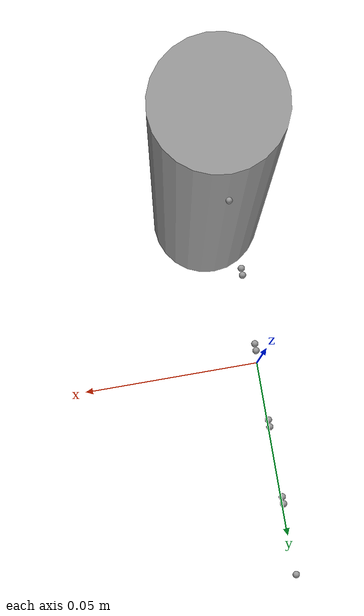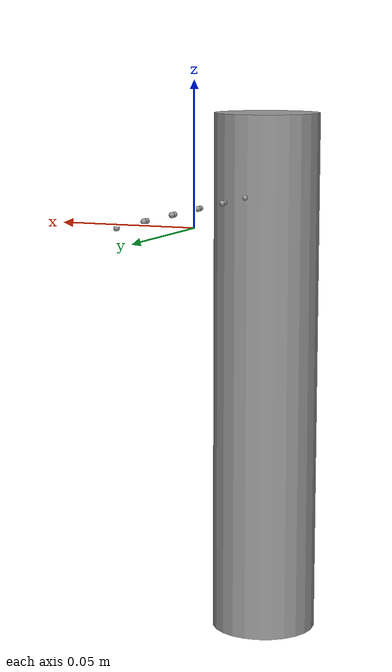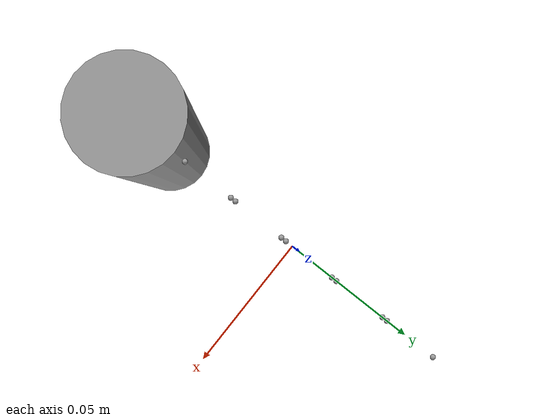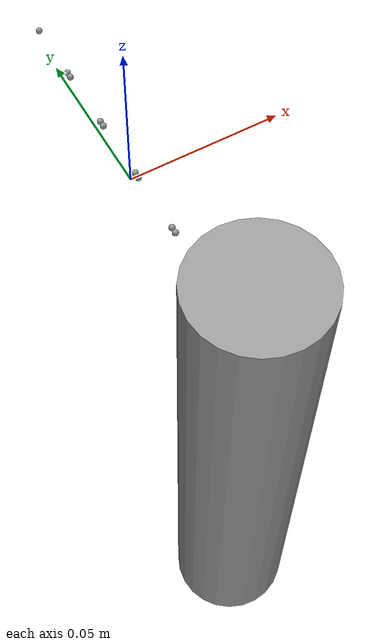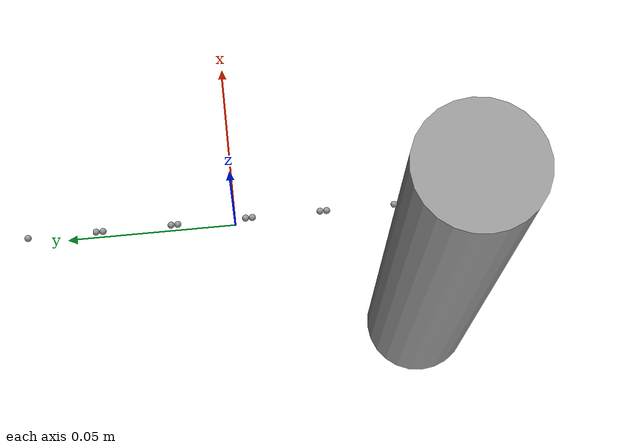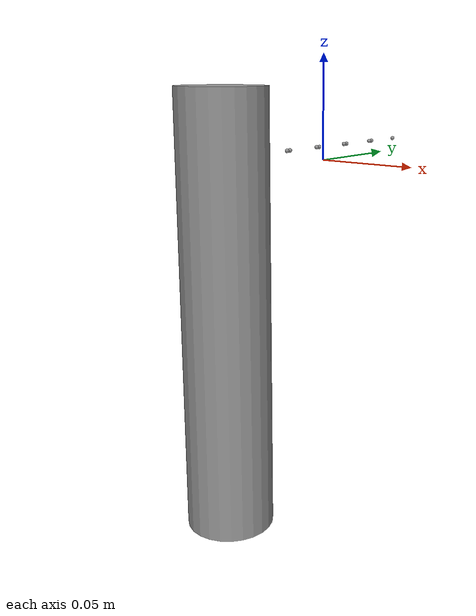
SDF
<?xml version='1.0'?>
<sdf version='1.6'>
  <model name='RubberRod'>
    <link name='link_2_clone'>
      <self_collide>true</self_collide>
      <pose frame=''>0 -0.069091 -0.063636 0 -0 0</pose>
      <inertial>
        <mass>1</mass>
        <inertia>
          <ixx>0.15</ixx>
          <ixy>0</ixy>
          <ixz>0</ixz>
          <iyy>0.15</iyy>
          <iyz>0</iyz>
          <izz>0.12</izz>
        </inertia>
        <pose frame=''>0 0 0 0 -0 0</pose>
      </inertial>
      <self_collide>0</self_collide>
      <kinematic>0</kinematic>
      <visual name='visual'>
        <pose frame=''>0 0 0 0 -0 0</pose>
        <geometry>
          <cylinder>
            <radius>0.02</radius>
            <length>0.2</length>
          </cylinder>
        </geometry>
        <material>
          <lighting>1</lighting>
          <script>
            <uri>file://media/materials/scripts/gazebo.material</uri>
            <name>Gazebo/Grey</name>
          </script>
          <shader type='pixel'>
            <normal_map>__default__</normal_map>
          </shader>
          <ambient>0.3 0.3 0.3 1</ambient>
          <diffuse>0.7 0.7 0.7 1</diffuse>
          <specular>0.01 0.01 0.01 1</specular>
          <emissive>0 0 0 1</emissive>
        </material>
        <transparency>0</transparency>
        <cast_shadows>1</cast_shadows>
      </visual>
      <collision name='collision'>
        <laser_retro>0</laser_retro>
        <max_contacts>10</max_contacts>
        <pose frame=''>0 0 0 0 -0 0</pose>
        <geometry>
          <cylinder>
            <radius>0.02</radius>
            <length>0.2</length>
          </cylinder>
        </geometry>
        <surface>
          <friction>
            <ode>
              <mu>1</mu>
              <mu2>1</mu2>
              <fdir1>0 0 0</fdir1>
              <slip1>0</slip1>
              <slip2>0</slip2>
            </ode>
            <torsional>
              <coefficient>1</coefficient>
              <patch_radius>0</patch_radius>
              <surface_radius>0</surface_radius>
              <use_patch_radius>1</use_patch_radius>
              <ode>
                <slip>0</slip>
              </ode>
            </torsional>
          </friction>
          <bounce>
            <restitution_coefficient>0</restitution_coefficient>
            <threshold>1e+06</threshold>
          </bounce>
          <contact>
            <collide_without_contact>0</collide_without_contact>
            <collide_without_contact_bitmask>1</collide_without_contact_bitmask>
            <collide_bitmask>1</collide_bitmask>
            <ode>
              <soft_cfm>0</soft_cfm>
              <soft_erp>0.2</soft_erp>
              <kp>1e+13</kp>
              <kd>1</kd>
              <max_vel>0.01</max_vel>
              <min_depth>0</min_depth>
            </ode>
            <bullet>
              <split_impulse>1</split_impulse>
              <split_impulse_penetration_threshold>-0.01</split_impulse_penetration_threshold>
              <soft_cfm>0</soft_cfm>
              <soft_erp>0.2</soft_erp>
              <kp>1e+13</kp>
              <kd>1</kd>
            </bullet>
          </contact>
        </surface>
      </collision>
    </link>
    <link name='link_3_clone'>
      <self_collide>true</self_collide>
      <pose frame=''>0 -0.047091 0.006364 0 -0 0</pose>
      <inertial>
        <mass>0.0001</mass>
        <inertia>
          <ixx>0.000001</ixx>
          <ixy>0</ixy>
          <ixz>0</ixz>
          <iyy>0.000001</iyy>
          <iyz>0</iyz>
          <izz>0.000001</izz>
        </inertia>
        <pose frame=''>0 0 0 0 -0 0</pose>
      </inertial>
      <self_collide>0</self_collide>
      <kinematic>0</kinematic>
      <visual name='visual'>
        <pose frame=''>0 0 0 0 -0 0</pose>
        <geometry>
          <sphere>
            <radius>0.001</radius>
          </sphere>
        </geometry>
        <material>
          <lighting>1</lighting>
          <script>
            <uri>file://media/materials/scripts/gazebo.material</uri>
            <name>Gazebo/Grey</name>
          </script>
          <shader type='pixel'>
            <normal_map>__default__</normal_map>
          </shader>
          <ambient>0.3 0.3 0.3 1</ambient>
          <diffuse>0.7 0.7 0.7 1</diffuse>
          <specular>0.01 0.01 0.01 1</specular>
          <emissive>0 0 0 1</emissive>
        </material>
        <transparency>0</transparency>
        <cast_shadows>1</cast_shadows>
      </visual>
      <collision name='collision'>
        <laser_retro>0</laser_retro>
        <max_contacts>10</max_contacts>
        <pose frame=''>0 0 0 0 -0 0</pose>
        <geometry>
          <sphere>
            <radius>0.001</radius>
          </sphere>
        </geometry>
        <surface>
          <friction>
            <ode>
              <mu>1</mu>
              <mu2>1</mu2>
              <fdir1>0 0 0</fdir1>
              <slip1>0</slip1>
              <slip2>0</slip2>
            </ode>
            <torsional>
              <coefficient>1</coefficient>
              <patch_radius>0</patch_radius>
              <surface_radius>0</surface_radius>
              <use_patch_radius>1</use_patch_radius>
              <ode>
                <slip>0</slip>
              </ode>
            </torsional>
          </friction>
          <bounce>
            <restitution_coefficient>0</restitution_coefficient>
            <threshold>1e+06</threshold>
          </bounce>
          <contact>
            <collide_without_contact>0</collide_without_contact>
            <collide_without_contact_bitmask>1</collide_without_contact_bitmask>
            <collide_bitmask>1</collide_bitmask>
            <ode>
              <soft_cfm>0</soft_cfm>
              <soft_erp>0.2</soft_erp>
              <kp>1e+13</kp>
              <kd>1</kd>
              <max_vel>0.01</max_vel>
              <min_depth>0</min_depth>
            </ode>
            <bullet>
              <split_impulse>1</split_impulse>
              <split_impulse_penetration_threshold>-0.01</split_impulse_penetration_threshold>
              <soft_cfm>0</soft_cfm>
              <soft_erp>0.2</soft_erp>
              <kp>1e+13</kp>
              <kd>1</kd>
            </bullet>
          </contact>
        </surface>
      </collision>
    </link>
    <link name='link_3_clone_clone'>
      <self_collide>true</self_collide>
      <pose frame=''>0 -0.027091 0.006364 0 -0 0</pose>
      <inertial>
        <mass>0.0001</mass>
        <inertia>
          <ixx>0.000001</ixx>
          <ixy>0</ixy>
          <ixz>0</ixz>
          <iyy>0.000001</iyy>
          <iyz>0</iyz>
          <izz>0.000001</izz>
        </inertia>
        <pose frame=''>0 0 0 0 -0 0</pose>
      </inertial>
      <self_collide>0</self_collide>
      <kinematic>0</kinematic>
      <visual name='visual'>
        <pose frame=''>0 0 0 0 -0 0</pose>
        <geometry>
          <sphere>
            <radius>0.001</radius>
          </sphere>
        </geometry>
        <material>
          <lighting>1</lighting>
          <script>
            <uri>file://media/materials/scripts/gazebo.material</uri>
            <name>Gazebo/Grey</name>
          </script>
          <shader type='pixel'>
            <normal_map>__default__</normal_map>
          </shader>
          <ambient>0.3 0.3 0.3 1</ambient>
          <diffuse>0.7 0.7 0.7 1</diffuse>
          <specular>0.01 0.01 0.01 1</specular>
          <emissive>0 0 0 1</emissive>
        </material>
        <transparency>0</transparency>
        <cast_shadows>1</cast_shadows>
      </visual>
      <collision name='collision'>
        <laser_retro>0</laser_retro>
        <max_contacts>10</max_contacts>
        <pose frame=''>0 0 0 0 -0 0</pose>
        <geometry>
          <sphere>
            <radius>0.001</radius>
          </sphere>
        </geometry>
        <surface>
          <friction>
            <ode>
              <mu>1</mu>
              <mu2>1</mu2>
              <fdir1>0 0 0</fdir1>
              <slip1>0</slip1>
              <slip2>0</slip2>
            </ode>
            <torsional>
              <coefficient>1</coefficient>
              <patch_radius>0</patch_radius>
              <surface_radius>0</surface_radius>
              <use_patch_radius>1</use_patch_radius>
              <ode>
                <slip>0</slip>
              </ode>
            </torsional>
          </friction>
          <bounce>
            <restitution_coefficient>0</restitution_coefficient>
            <threshold>1e+06</threshold>
          </bounce>
          <contact>
            <collide_without_contact>0</collide_without_contact>
            <collide_without_contact_bitmask>1</collide_without_contact_bitmask>
            <collide_bitmask>1</collide_bitmask>
            <ode>
              <soft_cfm>0</soft_cfm>
              <soft_erp>0.2</soft_erp>
              <kp>1e+13</kp>
              <kd>1</kd>
              <max_vel>0.01</max_vel>
              <min_depth>0</min_depth>
            </ode>
            <bullet>
              <split_impulse>1</split_impulse>
              <split_impulse_penetration_threshold>-0.01</split_impulse_penetration_threshold>
              <soft_cfm>0</soft_cfm>
              <soft_erp>0.2</soft_erp>
              <kp>1e+13</kp>
              <kd>1</kd>
            </bullet>
          </contact>
        </surface>
      </collision>
    </link>
    <link name='link_3_clone_clone_clone'>
      <self_collide>true</self_collide>
      <pose frame=''>0 -0.025091 0.006364 0 -0 0</pose>
      <inertial>
        <mass>0.0001</mass>
        <inertia>
          <ixx>0.000001</ixx>
          <ixy>0</ixy>
          <ixz>0</ixz>
          <iyy>0.000001</iyy>
          <iyz>0</iyz>
          <izz>0.000001</izz>
        </inertia>
        <pose frame=''>0 0 0 0 -0 0</pose>
      </inertial>
      <self_collide>0</self_collide>
      <kinematic>0</kinematic>
      <visual name='visual'>
        <pose frame=''>0 0 0 0 -0 0</pose>
        <geometry>
          <sphere>
            <radius>0.001</radius>
          </sphere>
        </geometry>
        <material>
          <lighting>1</lighting>
          <script>
            <uri>file://media/materials/scripts/gazebo.material</uri>
            <name>Gazebo/Grey</name>
          </script>
          <shader type='pixel'>
            <normal_map>__default__</normal_map>
          </shader>
          <ambient>0.3 0.3 0.3 1</ambient>
          <diffuse>0.7 0.7 0.7 1</diffuse>
          <specular>0.01 0.01 0.01 1</specular>
          <emissive>0 0 0 1</emissive>
        </material>
        <transparency>0</transparency>
        <cast_shadows>1</cast_shadows>
      </visual>
      <collision name='collision'>
        <laser_retro>0</laser_retro>
        <max_contacts>10</max_contacts>
        <pose frame=''>0 0 0 0 -0 0</pose>
        <geometry>
          <sphere>
            <radius>0.001</radius>
          </sphere>
        </geometry>
        <surface>
          <friction>
            <ode>
              <mu>1</mu>
              <mu2>1</mu2>
              <fdir1>0 0 0</fdir1>
              <slip1>0</slip1>
              <slip2>0</slip2>
            </ode>
            <torsional>
              <coefficient>1</coefficient>
              <patch_radius>0</patch_radius>
              <surface_radius>0</surface_radius>
              <use_patch_radius>1</use_patch_radius>
              <ode>
                <slip>0</slip>
              </ode>
            </torsional>
          </friction>
          <bounce>
            <restitution_coefficient>0</restitution_coefficient>
            <threshold>1e+06</threshold>
          </bounce>
          <contact>
            <collide_without_contact>0</collide_without_contact>
            <collide_without_contact_bitmask>1</collide_without_contact_bitmask>
            <collide_bitmask>1</collide_bitmask>
            <ode>
              <soft_cfm>0</soft_cfm>
              <soft_erp>0.2</soft_erp>
              <kp>1e+13</kp>
              <kd>1</kd>
              <max_vel>0.01</max_vel>
              <min_depth>0</min_depth>
            </ode>
            <bullet>
              <split_impulse>1</split_impulse>
              <split_impulse_penetration_threshold>-0.01</split_impulse_penetration_threshold>
              <soft_cfm>0</soft_cfm>
              <soft_erp>0.2</soft_erp>
              <kp>1e+13</kp>
              <kd>1</kd>
            </bullet>
          </contact>
        </surface>
      </collision>
    </link>
    <link name='link_3_clone_clone_clone_clone'>
      <self_collide>true</self_collide>
      <pose frame=''>0 -0.005091 0.006364 0 -0 0</pose>
      <inertial>
        <mass>0.0001</mass>
        <inertia>
          <ixx>0.000001</ixx>
          <ixy>0</ixy>
          <ixz>0</ixz>
          <iyy>0.000001</iyy>
          <iyz>0</iyz>
          <izz>0.000001</izz>
        </inertia>
        <pose frame=''>0 0 0 0 -0 0</pose>
      </inertial>
      <self_collide>0</self_collide>
      <kinematic>0</kinematic>
      <visual name='visual'>
        <pose frame=''>0 0 0 0 -0 0</pose>
        <geometry>
          <sphere>
            <radius>0.001</radius>
          </sphere>
        </geometry>
        <material>
          <lighting>1</lighting>
          <script>
            <uri>file://media/materials/scripts/gazebo.material</uri>
            <name>Gazebo/Grey</name>
          </script>
          <shader type='pixel'>
            <normal_map>__default__</normal_map>
          </shader>
          <ambient>0.3 0.3 0.3 1</ambient>
          <diffuse>0.7 0.7 0.7 1</diffuse>
          <specular>0.01 0.01 0.01 1</specular>
          <emissive>0 0 0 1</emissive>
        </material>
        <transparency>0</transparency>
        <cast_shadows>1</cast_shadows>
      </visual>
      <collision name='collision'>
        <laser_retro>0</laser_retro>
        <max_contacts>10</max_contacts>
        <pose frame=''>0 0 0 0 -0 0</pose>
        <geometry>
          <sphere>
            <radius>0.001</radius>
          </sphere>
        </geometry>
        <surface>
          <friction>
            <ode>
              <mu>1</mu>
              <mu2>1</mu2>
              <fdir1>0 0 0</fdir1>
              <slip1>0</slip1>
              <slip2>0</slip2>
            </ode>
            <torsional>
              <coefficient>1</coefficient>
              <patch_radius>0</patch_radius>
              <surface_radius>0</surface_radius>
              <use_patch_radius>1</use_patch_radius>
              <ode>
                <slip>0</slip>
              </ode>
            </torsional>
          </friction>
          <bounce>
            <restitution_coefficient>0</restitution_coefficient>
            <threshold>1e+06</threshold>
          </bounce>
          <contact>
            <collide_without_contact>0</collide_without_contact>
            <collide_without_contact_bitmask>1</collide_without_contact_bitmask>
            <collide_bitmask>1</collide_bitmask>
            <ode>
              <soft_cfm>0</soft_cfm>
              <soft_erp>0.2</soft_erp>
              <kp>1e+13</kp>
              <kd>1</kd>
              <max_vel>0.01</max_vel>
              <min_depth>0</min_depth>
            </ode>
            <bullet>
              <split_impulse>1</split_impulse>
              <split_impulse_penetration_threshold>-0.01</split_impulse_penetration_threshold>
              <soft_cfm>0</soft_cfm>
              <soft_erp>0.2</soft_erp>
              <kp>1e+13</kp>
              <kd>1</kd>
            </bullet>
          </contact>
        </surface>
      </collision>
    </link>
    <link name='link_3_clone_clone_clone_clone_clone'>
      <self_collide>true</self_collide>
      <pose frame=''>0 -0.003091 0.006364 0 -0 0</pose>
      <inertial>
        <mass>0.0001</mass>
        <inertia>
          <ixx>0.000001</ixx>
          <ixy>0</ixy>
          <ixz>0</ixz>
          <iyy>0.000001</iyy>
          <iyz>0</iyz>
          <izz>0.000001</izz>
        </inertia>
        <pose frame=''>0 0 0 0 -0 0</pose>
      </inertial>
      <self_collide>0</self_collide>
      <kinematic>0</kinematic>
      <visual name='visual'>
        <pose frame=''>0 0 0 0 -0 0</pose>
        <geometry>
          <sphere>
            <radius>0.001</radius>
          </sphere>
        </geometry>
        <material>
          <lighting>1</lighting>
          <script>
            <uri>file://media/materials/scripts/gazebo.material</uri>
            <name>Gazebo/Grey</name>
          </script>
          <shader type='pixel'>
            <normal_map>__default__</normal_map>
          </shader>
          <ambient>0.3 0.3 0.3 1</ambient>
          <diffuse>0.7 0.7 0.7 1</diffuse>
          <specular>0.01 0.01 0.01 1</specular>
          <emissive>0 0 0 1</emissive>
        </material>
        <transparency>0</transparency>
        <cast_shadows>1</cast_shadows>
      </visual>
      <collision name='collision'>
        <laser_retro>0</laser_retro>
        <max_contacts>10</max_contacts>
        <pose frame=''>0 0 0 0 -0 0</pose>
        <geometry>
          <sphere>
            <radius>0.001</radius>
          </sphere>
        </geometry>
        <surface>
          <friction>
            <ode>
              <mu>1</mu>
              <mu2>1</mu2>
              <fdir1>0 0 0</fdir1>
              <slip1>0</slip1>
              <slip2>0</slip2>
            </ode>
            <torsional>
              <coefficient>1</coefficient>
              <patch_radius>0</patch_radius>
              <surface_radius>0</surface_radius>
              <use_patch_radius>1</use_patch_radius>
              <ode>
                <slip>0</slip>
              </ode>
            </torsional>
          </friction>
          <bounce>
            <restitution_coefficient>0</restitution_coefficient>
            <threshold>1e+06</threshold>
          </bounce>
          <contact>
            <collide_without_contact>0</collide_without_contact>
            <collide_without_contact_bitmask>1</collide_without_contact_bitmask>
            <collide_bitmask>1</collide_bitmask>
            <ode>
              <soft_cfm>0</soft_cfm>
              <soft_erp>0.2</soft_erp>
              <kp>1e+13</kp>
              <kd>1</kd>
              <max_vel>0.01</max_vel>
              <min_depth>0</min_depth>
            </ode>
            <bullet>
              <split_impulse>1</split_impulse>
              <split_impulse_penetration_threshold>-0.01</split_impulse_penetration_threshold>
              <soft_cfm>0</soft_cfm>
              <soft_erp>0.2</soft_erp>
              <kp>1e+13</kp>
              <kd>1</kd>
            </bullet>
          </contact>
        </surface>
      </collision>
    </link>
    <link name='link_3_clone_clone_clone_clone_clone_clone'>
      <self_collide>true</self_collide>
      <pose frame=''>0 0.016909 0.006364 0 -0 0</pose>
      <inertial>
        <mass>0.0001</mass>
        <inertia>
          <ixx>0.000001</ixx>
          <ixy>0</ixy>
          <ixz>0</ixz>
          <iyy>0.000001</iyy>
          <iyz>0</iyz>
          <izz>0.000001</izz>
        </inertia>
        <pose frame=''>0 0 0 0 -0 0</pose>
      </inertial>
      <self_collide>0</self_collide>
      <kinematic>0</kinematic>
      <visual name='visual'>
        <pose frame=''>0 0 0 0 -0 0</pose>
        <geometry>
          <sphere>
            <radius>0.001</radius>
          </sphere>
        </geometry>
        <material>
          <lighting>1</lighting>
          <script>
            <uri>file://media/materials/scripts/gazebo.material</uri>
            <name>Gazebo/Grey</name>
          </script>
          <shader type='pixel'>
            <normal_map>__default__</normal_map>
          </shader>
          <ambient>0.3 0.3 0.3 1</ambient>
          <diffuse>0.7 0.7 0.7 1</diffuse>
          <specular>0.01 0.01 0.01 1</specular>
          <emissive>0 0 0 1</emissive>
        </material>
        <transparency>0</transparency>
        <cast_shadows>1</cast_shadows>
      </visual>
      <collision name='collision'>
        <laser_retro>0</laser_retro>
        <max_contacts>10</max_contacts>
        <pose frame=''>0 0 0 0 -0 0</pose>
        <geometry>
          <sphere>
            <radius>0.001</radius>
          </sphere>
        </geometry>
        <surface>
          <friction>
            <ode>
              <mu>1</mu>
              <mu2>1</mu2>
              <fdir1>0 0 0</fdir1>
              <slip1>0</slip1>
              <slip2>0</slip2>
            </ode>
            <torsional>
              <coefficient>1</coefficient>
              <patch_radius>0</patch_radius>
              <surface_radius>0</surface_radius>
              <use_patch_radius>1</use_patch_radius>
              <ode>
                <slip>0</slip>
              </ode>
            </torsional>
          </friction>
          <bounce>
            <restitution_coefficient>0</restitution_coefficient>
            <threshold>1e+06</threshold>
          </bounce>
          <contact>
            <collide_without_contact>0</collide_without_contact>
            <collide_without_contact_bitmask>1</collide_without_contact_bitmask>
            <collide_bitmask>1</collide_bitmask>
            <ode>
              <soft_cfm>0</soft_cfm>
              <soft_erp>0.2</soft_erp>
              <kp>1e+13</kp>
              <kd>1</kd>
              <max_vel>0.01</max_vel>
              <min_depth>0</min_depth>
            </ode>
            <bullet>
              <split_impulse>1</split_impulse>
              <split_impulse_penetration_threshold>-0.01</split_impulse_penetration_threshold>
              <soft_cfm>0</soft_cfm>
              <soft_erp>0.2</soft_erp>
              <kp>1e+13</kp>
              <kd>1</kd>
            </bullet>
          </contact>
        </surface>
      </collision>
    </link>
    <link name='link_3_clone_clone_clone_clone_clone_clone_clone'>
      <self_collide>true</self_collide>
      <pose frame=''>0 0.018909 0.006364 0 -0 0</pose>
      <inertial>
        <mass>0.0001</mass>
        <inertia>
          <ixx>0.000001</ixx>
          <ixy>0</ixy>
          <ixz>0</ixz>
          <iyy>0.000001</iyy>
          <iyz>0</iyz>
          <izz>0.000001</izz>
        </inertia>
        <pose frame=''>0 0 0 0 -0 0</pose>
      </inertial>
      <self_collide>0</self_collide>
      <kinematic>0</kinematic>
      <visual name='visual'>
        <pose frame=''>0 0 0 0 -0 0</pose>
        <geometry>
          <sphere>
            <radius>0.001</radius>
          </sphere>
        </geometry>
        <material>
          <lighting>1</lighting>
          <script>
            <uri>file://media/materials/scripts/gazebo.material</uri>
            <name>Gazebo/Grey</name>
          </script>
          <shader type='pixel'>
            <normal_map>__default__</normal_map>
          </shader>
          <ambient>0.3 0.3 0.3 1</ambient>
          <diffuse>0.7 0.7 0.7 1</diffuse>
          <specular>0.01 0.01 0.01 1</specular>
          <emissive>0 0 0 1</emissive>
        </material>
        <transparency>0</transparency>
        <cast_shadows>1</cast_shadows>
      </visual>
      <collision name='collision'>
        <laser_retro>0</laser_retro>
        <max_contacts>10</max_contacts>
        <pose frame=''>0 0 0 0 -0 0</pose>
        <geometry>
          <sphere>
            <radius>0.001</radius>
          </sphere>
        </geometry>
        <surface>
          <friction>
            <ode>
              <mu>1</mu>
              <mu2>1</mu2>
              <fdir1>0 0 0</fdir1>
              <slip1>0</slip1>
              <slip2>0</slip2>
            </ode>
            <torsional>
              <coefficient>1</coefficient>
              <patch_radius>0</patch_radius>
              <surface_radius>0</surface_radius>
              <use_patch_radius>1</use_patch_radius>
              <ode>
                <slip>0</slip>
              </ode>
            </torsional>
          </friction>
          <bounce>
            <restitution_coefficient>0</restitution_coefficient>
            <threshold>1e+06</threshold>
          </bounce>
          <contact>
            <collide_without_contact>0</collide_without_contact>
            <collide_without_contact_bitmask>1</collide_without_contact_bitmask>
            <collide_bitmask>1</collide_bitmask>
            <ode>
              <soft_cfm>0</soft_cfm>
              <soft_erp>0.2</soft_erp>
              <kp>1e+13</kp>
              <kd>1</kd>
              <max_vel>0.01</max_vel>
              <min_depth>0</min_depth>
            </ode>
            <bullet>
              <split_impulse>1</split_impulse>
              <split_impulse_penetration_threshold>-0.01</split_impulse_penetration_threshold>
              <soft_cfm>0</soft_cfm>
              <soft_erp>0.2</soft_erp>
              <kp>1e+13</kp>
              <kd>1</kd>
            </bullet>
          </contact>
        </surface>
      </collision>
    </link>
    <link name='link_3_clone_clone_clone_clone_clone_clone_clone_clone'>
      <self_collide>true</self_collide>
      <pose frame=''>0 0.038909 0.006364 0 -0 0</pose>
      <inertial>
        <mass>0.0001</mass>
        <inertia>
          <ixx>0.000001</ixx>
          <ixy>0</ixy>
          <ixz>0</ixz>
          <iyy>0.000001</iyy>
          <iyz>0</iyz>
          <izz>0.000001</izz>
        </inertia>
        <pose frame=''>0 0 0 0 -0 0</pose>
      </inertial>
      <self_collide>0</self_collide>
      <kinematic>0</kinematic>
      <visual name='visual'>
        <pose frame=''>0 0 0 0 -0 0</pose>
        <geometry>
          <sphere>
            <radius>0.001</radius>
          </sphere>
        </geometry>
        <material>
          <lighting>1</lighting>
          <script>
            <uri>file://media/materials/scripts/gazebo.material</uri>
            <name>Gazebo/Grey</name>
          </script>
          <shader type='pixel'>
            <normal_map>__default__</normal_map>
          </shader>
          <ambient>0.3 0.3 0.3 1</ambient>
          <diffuse>0.7 0.7 0.7 1</diffuse>
          <specular>0.01 0.01 0.01 1</specular>
          <emissive>0 0 0 1</emissive>
        </material>
        <transparency>0</transparency>
        <cast_shadows>1</cast_shadows>
      </visual>
      <collision name='collision'>
        <laser_retro>0</laser_retro>
        <max_contacts>10</max_contacts>
        <pose frame=''>0 0 0 0 -0 0</pose>
        <geometry>
          <sphere>
            <radius>0.001</radius>
          </sphere>
        </geometry>
        <surface>
          <friction>
            <ode>
              <mu>1</mu>
              <mu2>1</mu2>
              <fdir1>0 0 0</fdir1>
              <slip1>0</slip1>
              <slip2>0</slip2>
            </ode>
            <torsional>
              <coefficient>1</coefficient>
              <patch_radius>0</patch_radius>
              <surface_radius>0</surface_radius>
              <use_patch_radius>1</use_patch_radius>
              <ode>
                <slip>0</slip>
              </ode>
            </torsional>
          </friction>
          <bounce>
            <restitution_coefficient>0</restitution_coefficient>
            <threshold>1e+06</threshold>
          </bounce>
          <contact>
            <collide_without_contact>0</collide_without_contact>
            <collide_without_contact_bitmask>1</collide_without_contact_bitmask>
            <collide_bitmask>1</collide_bitmask>
            <ode>
              <soft_cfm>0</soft_cfm>
              <soft_erp>0.2</soft_erp>
              <kp>1e+13</kp>
              <kd>1</kd>
              <max_vel>0.01</max_vel>
              <min_depth>0</min_depth>
            </ode>
            <bullet>
              <split_impulse>1</split_impulse>
              <split_impulse_penetration_threshold>-0.01</split_impulse_penetration_threshold>
              <soft_cfm>0</soft_cfm>
              <soft_erp>0.2</soft_erp>
              <kp>1e+13</kp>
              <kd>1</kd>
            </bullet>
          </contact>
        </surface>
      </collision>
    </link>
    <link name='link_3_clone_clone_clone_clone_clone_clone_clone_clone_clone'>
      <self_collide>true</self_collide>
      <pose frame=''>0 0.040909 0.006364 0 -0 0</pose>
      <inertial>
        <mass>0.0001</mass>
        <inertia>
          <ixx>0.000001</ixx>
          <ixy>0</ixy>
          <ixz>0</ixz>
          <iyy>0.000001</iyy>
          <iyz>0</iyz>
          <izz>0.000001</izz>
        </inertia>
        <pose frame=''>0 0 0 0 -0 0</pose>
      </inertial>
      <self_collide>0</self_collide>
      <kinematic>0</kinematic>
      <visual name='visual'>
        <pose frame=''>0 0 0 0 -0 0</pose>
        <geometry>
          <sphere>
            <radius>0.001</radius>
          </sphere>
        </geometry>
        <material>
          <lighting>1</lighting>
          <script>
            <uri>file://media/materials/scripts/gazebo.material</uri>
            <name>Gazebo/Grey</name>
          </script>
          <shader type='pixel'>
            <normal_map>__default__</normal_map>
          </shader>
          <ambient>0.3 0.3 0.3 1</ambient>
          <diffuse>0.7 0.7 0.7 1</diffuse>
          <specular>0.01 0.01 0.01 1</specular>
          <emissive>0 0 0 1</emissive>
        </material>
        <transparency>0</transparency>
        <cast_shadows>1</cast_shadows>
      </visual>
      <collision name='collision'>
        <laser_retro>0</laser_retro>
        <max_contacts>10</max_contacts>
        <pose frame=''>0 0 0 0 -0 0</pose>
        <geometry>
          <sphere>
            <radius>0.001</radius>
          </sphere>
        </geometry>
        <surface>
          <friction>
            <ode>
              <mu>1</mu>
              <mu2>1</mu2>
              <fdir1>0 0 0</fdir1>
              <slip1>0</slip1>
              <slip2>0</slip2>
            </ode>
            <torsional>
              <coefficient>1</coefficient>
              <patch_radius>0</patch_radius>
              <surface_radius>0</surface_radius>
              <use_patch_radius>1</use_patch_radius>
              <ode>
                <slip>0</slip>
              </ode>
            </torsional>
          </friction>
          <bounce>
            <restitution_coefficient>0</restitution_coefficient>
            <threshold>1e+06</threshold>
          </bounce>
          <contact>
            <collide_without_contact>0</collide_without_contact>
            <collide_without_contact_bitmask>1</collide_without_contact_bitmask>
            <collide_bitmask>1</collide_bitmask>
            <ode>
              <soft_cfm>0</soft_cfm>
              <soft_erp>0.2</soft_erp>
              <kp>1e+13</kp>
              <kd>1</kd>
              <max_vel>0.01</max_vel>
              <min_depth>0</min_depth>
            </ode>
            <bullet>
              <split_impulse>1</split_impulse>
              <split_impulse_penetration_threshold>-0.01</split_impulse_penetration_threshold>
              <soft_cfm>0</soft_cfm>
              <soft_erp>0.2</soft_erp>
              <kp>1e+13</kp>
              <kd>1</kd>
            </bullet>
          </contact>
        </surface>
      </collision>
    </link>
    <link name='link_3_clone_clone_clone_clone_clone_clone_clone_clone_clone_clone'>
      <self_collide>true</self_collide>
      <pose frame=''>0 0.060909 0.006364 0 -0 0</pose>
      <inertial>
        <mass>0.0001</mass>
        <inertia>
          <ixx>0.000001</ixx>
          <ixy>0</ixy>
          <ixz>0</ixz>
          <iyy>0.000001</iyy>
          <iyz>0</iyz>
          <izz>0.000001</izz>
        </inertia>
        <pose frame=''>0 0 0 0 -0 0</pose>
      </inertial>
      <self_collide>0</self_collide>
      <kinematic>0</kinematic>
      <visual name='visual'>
        <pose frame=''>0 0 0 0 -0 0</pose>
        <geometry>
          <sphere>
            <radius>0.001</radius>
          </sphere>
        </geometry>
        <material>
          <lighting>1</lighting>
          <script>
            <uri>file://media/materials/scripts/gazebo.material</uri>
            <name>Gazebo/Grey</name>
          </script>
          <shader type='pixel'>
            <normal_map>__default__</normal_map>
          </shader>
          <ambient>0.3 0.3 0.3 1</ambient>
          <diffuse>0.7 0.7 0.7 1</diffuse>
          <specular>0.01 0.01 0.01 1</specular>
          <emissive>0 0 0 1</emissive>
        </material>
        <transparency>0</transparency>
        <cast_shadows>1</cast_shadows>
      </visual>
      <collision name='collision'>
        <laser_retro>0</laser_retro>
        <max_contacts>10</max_contacts>
        <pose frame=''>0 0 0 0 -0 0</pose>
        <geometry>
          <sphere>
            <radius>0.001</radius>
          </sphere>
        </geometry>
        <surface>
          <friction>
            <ode>
              <mu>1</mu>
              <mu2>1</mu2>
              <fdir1>0 0 0</fdir1>
              <slip1>0</slip1>
              <slip2>0</slip2>
            </ode>
            <torsional>
              <coefficient>1</coefficient>
              <patch_radius>0</patch_radius>
              <surface_radius>0</surface_radius>
              <use_patch_radius>1</use_patch_radius>
              <ode>
                <slip>0</slip>
              </ode>
            </torsional>
          </friction>
          <bounce>
            <restitution_coefficient>0</restitution_coefficient>
            <threshold>1e+06</threshold>
          </bounce>
          <contact>
            <collide_without_contact>0</collide_without_contact>
            <collide_without_contact_bitmask>1</collide_without_contact_bitmask>
            <collide_bitmask>1</collide_bitmask>
            <ode>
              <soft_cfm>0</soft_cfm>
              <soft_erp>0.2</soft_erp>
              <kp>1e+13</kp>
              <kd>1</kd>
              <max_vel>0.01</max_vel>
              <min_depth>0</min_depth>
            </ode>
            <bullet>
              <split_impulse>1</split_impulse>
              <split_impulse_penetration_threshold>-0.01</split_impulse_penetration_threshold>
              <soft_cfm>0</soft_cfm>
              <soft_erp>0.2</soft_erp>
              <kp>1e+13</kp>
              <kd>1</kd>
            </bullet>
          </contact>
        </surface>
      </collision>
    </link>
    <joint name='link_2_clone_JOINT_0' type='ball'>
      <parent>link_2_clone</parent>
      <child>link_3_clone</child>
      <pose frame=''>0 0 0 0 -0 0</pose>
      <physics>
        <ode>
          <limit>
            <cfm>0</cfm>
            <erp>0.2</erp>
          </limit>
          <suspension>
            <cfm>0</cfm>
            <erp>0.2</erp>
          </suspension>
        </ode>
      </physics>
    </joint>
    <joint name='link_3_clone_JOINT_1' type='prismatic'>
      <parent>link_3_clone</parent>
      <child>link_3_clone_clone</child>
      <pose frame=''>0 0 0 0 -0 0</pose>
      <axis>
        <xyz>0 1 0</xyz>
        <use_parent_model_frame>0</use_parent_model_frame>
        <limit>
          <lower>-0.01</lower>
          <upper>0.01</upper>
          <effort>-1</effort>
          <velocity>-1</velocity>
        </limit>
        <dynamics>
          <spring_reference>0</spring_reference>
          <spring_stiffness>0</spring_stiffness>
          <damping>0</damping>
          <friction>0</friction>
        </dynamics>
      </axis>
      <physics>
        <ode>
          <limit>
            <cfm>0</cfm>
            <erp>0.2</erp>
          </limit>
          <suspension>
            <cfm>0</cfm>
            <erp>0.2</erp>
          </suspension>
        </ode>
      </physics>
    </joint>
    <joint name='link_3_clone_clone_JOINT_2' type='ball'>
      <parent>link_3_clone_clone</parent>
      <child>link_3_clone_clone_clone</child>
      <pose frame=''>0 0 0 0 -0 0</pose>
      <physics>
        <ode>
          <limit>
            <cfm>0</cfm>
            <erp>0.2</erp>
          </limit>
          <suspension>
            <cfm>0</cfm>
            <erp>0.2</erp>
          </suspension>
        </ode>
      </physics>
    </joint>
    <joint name='link_3_clone_clone_clone_JOINT_3' type='prismatic'>
      <parent>link_3_clone_clone_clone</parent>
      <child>link_3_clone_clone_clone_clone</child>
      <pose frame=''>0 0 0 0 -0 0</pose>
      <axis>
        <xyz>0 1 0</xyz>
        <use_parent_model_frame>0</use_parent_model_frame>
        <limit>
          <lower>-0.01</lower>
          <upper>0.01</upper>
          <effort>-1</effort>
          <velocity>-1</velocity>
        </limit>
        <dynamics>
          <spring_reference>0</spring_reference>
          <spring_stiffness>0</spring_stiffness>
          <damping>0</damping>
          <friction>0</friction>
        </dynamics>
      </axis>
      <physics>
        <ode>
          <limit>
            <cfm>0</cfm>
            <erp>0.2</erp>
          </limit>
          <suspension>
            <cfm>0</cfm>
            <erp>0.2</erp>
          </suspension>
        </ode>
      </physics>
    </joint>
    <joint name='link_3_clone_clone_clone_clone_JOINT_4' type='ball'>
      <parent>link_3_clone_clone_clone_clone</parent>
      <child>link_3_clone_clone_clone_clone_clone</child>
      <pose frame=''>0 0 0 0 -0 0</pose>
      <physics>
        <ode>
          <limit>
            <cfm>0</cfm>
            <erp>0.2</erp>
          </limit>
          <suspension>
            <cfm>0</cfm>
            <erp>0.2</erp>
          </suspension>
        </ode>
      </physics>
    </joint>
    <joint name='link_3_clone_clone_clone_clone_clone_JOINT_5' type='prismatic'>
      <parent>link_3_clone_clone_clone_clone_clone</parent>
      <child>link_3_clone_clone_clone_clone_clone_clone</child>
      <pose frame=''>0 0 0 0 -0 0</pose>
      <axis>
        <xyz>0 1 0</xyz>
        <use_parent_model_frame>0</use_parent_model_frame>
        <limit>
          <lower>-0.01</lower>
          <upper>0.01</upper>
          <effort>-1</effort>
          <velocity>-1</velocity>
        </limit>
        <dynamics>
          <spring_reference>0</spring_reference>
          <spring_stiffness>0</spring_stiffness>
          <damping>0</damping>
          <friction>0</friction>
        </dynamics>
      </axis>
      <physics>
        <ode>
          <limit>
            <cfm>0</cfm>
            <erp>0.2</erp>
          </limit>
          <suspension>
            <cfm>0</cfm>
            <erp>0.2</erp>
          </suspension>
        </ode>
      </physics>
    </joint>
    <joint name='link_3_clone_clone_clone_clone_clone_clone_JOINT_6' type='ball'>
      <parent>link_3_clone_clone_clone_clone_clone_clone</parent>
      <child>link_3_clone_clone_clone_clone_clone_clone_clone</child>
      <pose frame=''>0 0 0 0 -0 0</pose>
      <physics>
        <ode>
          <limit>
            <cfm>0</cfm>
            <erp>0.2</erp>
          </limit>
          <suspension>
            <cfm>0</cfm>
            <erp>0.2</erp>
          </suspension>
        </ode>
      </physics>
    </joint>
    <joint name='link_3_clone_clone_clone_clone_clone_clone_clone_JOINT_7' type='prismatic'>
      <parent>link_3_clone_clone_clone_clone_clone_clone_clone</parent>
      <child>link_3_clone_clone_clone_clone_clone_clone_clone_clone</child>
      <pose frame=''>0 0 0 0 -0 0</pose>
      <axis>
        <xyz>0 1 0</xyz>
        <use_parent_model_frame>0</use_parent_model_frame>
        <limit>
          <lower>-0.01</lower>
          <upper>0.01</upper>
          <effort>-1</effort>
          <velocity>-1</velocity>
        </limit>
        <dynamics>
          <spring_reference>0</spring_reference>
          <spring_stiffness>0</spring_stiffness>
          <damping>0</damping>
          <friction>0</friction>
        </dynamics>
      </axis>
      <physics>
        <ode>
          <limit>
            <cfm>0</cfm>
            <erp>0.2</erp>
          </limit>
          <suspension>
            <cfm>0</cfm>
            <erp>0.2</erp>
          </suspension>
        </ode>
      </physics>
    </joint>
    <joint name='link_3_clone_clone_clone_clone_clone_clone_clone_clone_JOINT_8' type='ball'>
      <parent>link_3_clone_clone_clone_clone_clone_clone_clone_clone</parent>
      <child>link_3_clone_clone_clone_clone_clone_clone_clone_clone_clone</child>
      <pose frame=''>0 0 0 0 -0 0</pose>
      <physics>
        <ode>
          <limit>
            <cfm>0</cfm>
            <erp>0.2</erp>
          </limit>
          <suspension>
            <cfm>0</cfm>
            <erp>0.2</erp>
          </suspension>
        </ode>
      </physics>
    </joint>
    <joint name='link_3_clone_clone_clone_clone_clone_clone_clone_clone_clone_JOINT_9' type='prismatic'>
      <parent>link_3_clone_clone_clone_clone_clone_clone_clone_clone_clone</parent>
      <child>link_3_clone_clone_clone_clone_clone_clone_clone_clone_clone_clone</child>
      <pose frame=''>0 0 0 0 -0 0</pose>
      <axis>
        <xyz>0 1 0</xyz>
        <use_parent_model_frame>0</use_parent_model_frame>
        <limit>
          <lower>-0.01</lower>
          <upper>0.01</upper>
          <effort>-1</effort>
          <velocity>-1</velocity>
        </limit>
        <dynamics>
          <spring_reference>0</spring_reference>
          <spring_stiffness>0</spring_stiffness>
          <damping>0</damping>
          <friction>0</friction>
        </dynamics>
      </axis>
      <physics>
        <ode>
          <limit>
            <cfm>0</cfm>
            <erp>0.2</erp>
          </limit>
          <suspension>
            <cfm>0</cfm>
            <erp>0.2</erp>
          </suspension>
        </ode>
      </physics>
    </joint>
    <static>0</static>
    <allow_auto_disable>1</allow_auto_disable>

    <plugin name="virtual_rubber_band" filename="libcosima_gazebo_virtual_rubber_band.so"/>
  </model>
</sdf>
